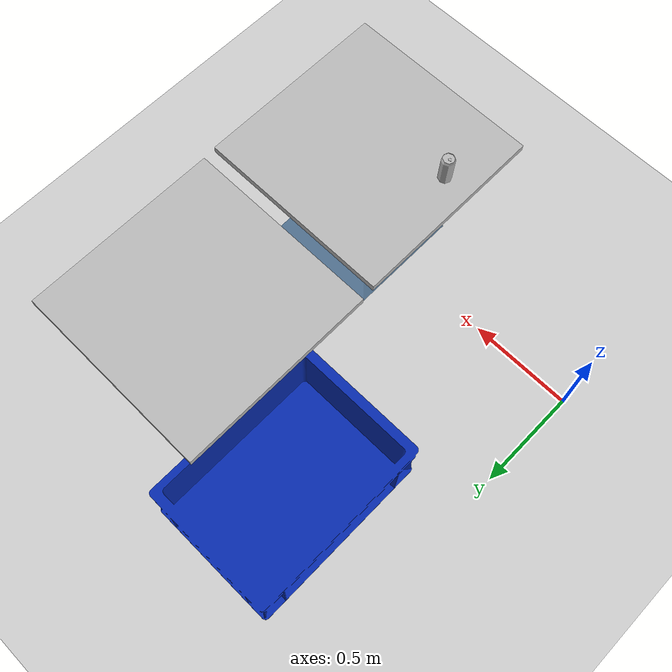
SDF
<sdf version="1.6">
 <world name="default">
  <model name="ground_plane">
   <static>1</static>
   <link name="link">
    <collision name="collision">
     <geometry><plane><normal>0 0 1</normal><size>100 100</size></plane></geometry>
     <surface>
      <contact><collide_bitmask>65535</collide_bitmask></contact>
      <friction><ode><mu>100</mu><mu2>50</mu2></ode></friction>
     </surface>
    </collision>
    <visual name="visual">
     <cast_shadows>0</cast_shadows>
     <geometry><plane><normal>0 0 1</normal><size>100 100</size></plane></geometry>
     <material>
      <script><uri>file://media/materials/scripts/gazebo.material</uri><name>Gazebo/Grey</name></script>
     </material>
    </visual>
   </link>
  </model>
  <light name="sun" type="directional">
   <pose>0 0 10 0 -0 0</pose>
   <diffuse>0.8 0.8 0.8 1</diffuse>
   <specular>0.2 0.2 0.2 1</specular>
   <attenuation>
    <range>1000</range>
    <constant>0.9</constant>
    <linear>0.01</linear>
    <quadratic>0.001</quadratic>
   </attenuation>
   <direction>-0.5 0.1 -0.9</direction>
  </light>
  <gravity>0 0 -9.8</gravity>
  <magnetic_field>6e-06 2.3e-05 -4.2e-05</magnetic_field>
  <atmosphere type="adiabatic"/>
  <physics name="default_physics" default="0" type="ode">
   <max_step_size>0.001</max_step_size>
   <real_time_factor>1</real_time_factor>
   <real_time_update_rate>1000</real_time_update_rate>
  </physics>
  <scene><ambient>0.4 0.4 0.4 1</ambient><background>0.7 0.7 0.7 1</background><shadows>1</shadows></scene>
  <audio><device>default</device></audio>
  <spherical_coordinates>
   <surface_model>EARTH_WGS84</surface_model>
   <latitude_deg>0</latitude_deg>
   <longitude_deg>0</longitude_deg>
   <elevation>0</elevation>
   <heading_deg>0</heading_deg>
  </spherical_coordinates>
  <model name="cafe_table">
   <static>1</static>
   <link name="link">
    <collision name="surface">
     <pose>0 0 0.755 0 -0 0</pose>
     <geometry><box><size>0.913 0.913 0.04</size></box></geometry>
    </collision>
    <collision name="column">
     <pose>0 0 0.37 0 -0 0</pose>
     <geometry><box><size>0.042 0.042 0.74</size></box></geometry>
    </collision>
    <collision name="base">
     <pose>0 0 0.02 0 -0 0</pose>
     <geometry><box><size>0.56 0.56 0.04</size></box></geometry>
    </collision>
    <visual name="visual">
     <geometry><mesh><uri>model://cafe_table/meshes/cafe_table.dae</uri></mesh></geometry>
    </visual>
   </link>
   <pose>1.25324 -0.00897 0 0 -0 0</pose>
  </model>
  <model name="cafe_table_0">
   <static>1</static>
   <link name="link">
    <collision name="surface">
     <pose>0 0 0.755 0 -0 0</pose>
     <geometry><box><size>0.913 0.913 0.04</size></box></geometry>
    </collision>
    <collision name="column">
     <pose>0 0 0.37 0 -0 0</pose>
     <geometry><box><size>0.042 0.042 0.74</size></box></geometry>
    </collision>
    <collision name="base">
     <pose>0 0 0.02 0 -0 0</pose>
     <geometry><box><size>0.56 0.56 0.04</size></box></geometry>
    </collision>
    <visual name="visual">
     <geometry><mesh><uri>model://cafe_table/meshes/cafe_table.dae</uri></mesh></geometry>
    </visual>
   </link>
   <pose>1.24538 0.970481 0 0 -0 0</pose>
  </model>
  <model name="dropoff_box">
   <static>1</static>
   <link name="link">
    <inertial>
     <mass>1</mass>
     <inertia>
      <ixx>0.0755262</ixx>
      <ixy>0</ixy>
      <ixz>0</ixz>
      <iyy>0.0441608</iyy>
      <iyz>0</iyz>
      <izz>0.103304</izz>
     </inertia>
    </inertial>
    <collision name="collision">
     <geometry><mesh><uri>model://dropoff_box/meshes/box_v1.stl</uri><scale>1 1 1</scale></mesh></geometry>
     <surface>
      <friction><ode><mu>30</mu><mu2>30</mu2></ode></friction>
      <contact>
       <ode>
        <soft_cfm>0</soft_cfm>
        <soft_erp>0.2</soft_erp>
        <kp>1e+13</kp>
        <kd>1</kd>
        <max_vel>0.01</max_vel>
        <min_depth>0</min_depth>
       </ode>
      </contact>
     </surface>
    </collision>
    <visual name="visual">
     <geometry><mesh><uri>model://dropoff_box/meshes/box_v1.dae</uri><scale>1 1 1</scale></mesh></geometry>
    </visual>
    <velocity_decay><linear>0</linear><angular>0</angular></velocity_decay>
   </link>
   <pose>0.604696 1.14789 0 0 -0 0</pose>
  </model>
  <model name="Coke">
   <static>1</static>
   <link name="body">
    <visual name="visual"><geometry><mesh><uri>model://Coke/meshes/coke.obj</uri></mesh></geometry></visual>
    <collision name="collision">
     <geometry><mesh><uri>model://Coke/meshes/coke.obj</uri></mesh></geometry>
    </collision>
    <inertial>
     <mass>1</mass>
     <inertia>
      <ixx>0.00336667</ixx>
      <iyy>0.000866667</iyy>
      <izz>0.00416667</izz>
      <ixy>0</ixy>
      <ixz>0</ixz>
      <iyz>0</iyz>
     </inertia>
    </inertial>
   </link>
   <pose>0.900994 -0.071707 0.786874 0 -0 0</pose>
  </model>
 </world>
</sdf>
